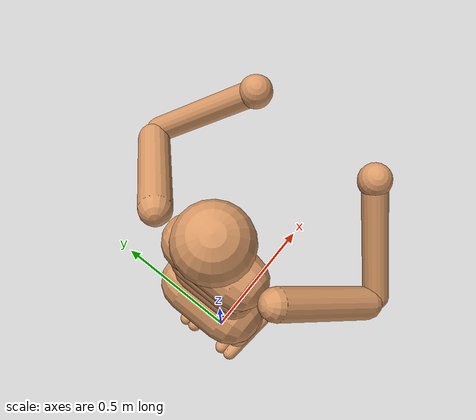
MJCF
<mujoco model="mars_humanoid">
  <compiler angle="degree" inertiafromgeom="true"/>
  <default>
    <joint armature="1" damping="1" limited="true"/>
    <geom condim="3" friction="0.65 0.005 0.0001" margin="0.001"
          rgba="0.85 0.6 0.4 1" solref="0.01 1" solimp="0.99 0.99 0.01"/>
    <motor ctrlrange="-150 150" ctrllimited="true"/>
  </default>

  <worldbody>
    <body name="torso" pos="0 0 1.4">
      <freejoint name="root"/>
      <camera name="front" pos="0 -3 0" xyaxes="1 0 0 0 0 1" mode="trackcom"/>
      <camera name="side"  pos="3 0 0" xyaxes="0 -1 0 0 0 1" mode="trackcom"/>

      <geom name="torso"  type="capsule" fromto="0 -0.07 0 0 0.07 0" size="0.07"/>
      <geom name="upper_waist" type="capsule" fromto="-0.01 -0.06 -0.12 -0.01 0.06 -0.12" size="0.06"/>

      <body name="head" pos="0 0 0.19">
        <geom name="head" type="sphere" size="0.09"/>
      </body>

      <body name="lower_waist" pos="-0.01 0 -0.26">
        <geom name="lower_waist" type="capsule" fromto="0 -0.06 0 0 0.06 0" size="0.06"/>
        <joint name="abdomen_z" axis="0 0 1" pos="0 0 0.065" range="-45 45" stiffness="20" damping="5"/>
        <joint name="abdomen_y" axis="0 1 0" pos="0 0 0.065" range="-75 30" stiffness="10" damping="5"/>

        <body name="pelvis" pos="0 0 -0.165">
          <joint name="abdomen_x" axis="1 0 0" pos="0 0 0.1" range="-35 35" stiffness="10" damping="5"/>
          <geom name="pelvis" type="capsule" fromto="-0.02 -0.07 0 -0.02 0.07 0" size="0.09"/>

          <!-- Right thigh / shin / foot -->
          <body name="right_thigh" pos="0 -0.1 -0.04">
            <joint name="right_hip_x" axis="1 0 0" range="-25 5"  stiffness="10" damping="5"/>
            <joint name="right_hip_z" axis="0 0 1" range="-60 35" stiffness="10" damping="5"/>
            <joint name="right_hip_y" axis="0 1 0" range="-110 20" stiffness="20" damping="5"/>
            <geom name="right_thigh" type="capsule" fromto="0 0 0 0 0.01 -0.34" size="0.06"/>
            <body name="right_shin" pos="0 0.01 -0.4">
              <joint name="right_knee" axis="0 -1 0" pos="0 0 0.02" range="-160 -2"/>
              <geom name="right_shin" type="capsule" fromto="0 0 0 0 0 -0.3" size="0.049"/>
              <body name="right_foot" pos="0 0 -0.39">
                <geom name="right_right_foot" type="capsule" fromto="-0.07 -0.02 0 0.14 -0.04 0" size="0.027"/>
                <geom name="left_right_foot"  type="capsule" fromto="-0.07  0.02 0 0.14  0.04 0" size="0.027"/>
              </body>
            </body>
          </body>

          <body name="left_thigh" pos="0 0.1 -0.04">
            <joint name="left_hip_x" axis="-1 0 0" range="-25 5"  stiffness="10" damping="5"/>
            <joint name="left_hip_z" axis="0 0 -1" range="-60 35" stiffness="10" damping="5"/>
            <joint name="left_hip_y" axis="0 1 0"  range="-110 20" stiffness="20" damping="5"/>
            <geom name="left_thigh" type="capsule" fromto="0 0 0 0 -0.01 -0.34" size="0.06"/>
            <body name="left_shin" pos="0 -0.01 -0.4">
              <joint name="left_knee" axis="0 -1 0" pos="0 0 0.02" range="-160 -2"/>
              <geom name="left_shin" type="capsule" fromto="0 0 0 0 0 -0.3" size="0.049"/>
              <body name="left_foot" pos="0 0 -0.39">
                <geom name="left_left_foot"  type="capsule" fromto="-0.07  0.02 0 0.14  0.04 0" size="0.027"/>
                <geom name="right_left_foot" type="capsule" fromto="-0.07 -0.02 0 0.14 -0.04 0" size="0.027"/>
              </body>
            </body>
          </body>
        </body>
      </body>

      <!-- Right arm -->
      <body name="right_upper_arm" pos="0 -0.17 0.06">
        <joint name="right_shoulder1" axis="2 1 1"  range="-85 60" stiffness="10" damping="5"/>
        <joint name="right_shoulder2" axis="0 -1 1" range="-85 60" stiffness="10" damping="5"/>
        <geom name="right_uarm1" type="capsule" fromto="0 0 0 0.16 -0.16 -0.16" size="0.04"/>
        <body name="right_lower_arm" pos="0.18 -0.18 -0.18">
          <joint name="right_elbow" axis="0 -1 1" range="-90 50" stiffness="0" damping="2"/>
          <geom name="right_larm" type="capsule" fromto="0.01 0.01 0.01 0.17 0.17 0.17" size="0.031"/>
          <geom name="right_hand" type="sphere" pos="0.18 0.18 0.18" size="0.04"/>
        </body>
      </body>

      <body name="left_upper_arm" pos="0 0.17 0.06">
        <joint name="left_shoulder1" axis="2 -1 1" range="-60 85" stiffness="10" damping="5"/>
        <joint name="left_shoulder2" axis="0 1 1"  range="-60 85" stiffness="10" damping="5"/>
        <geom name="left_uarm1" type="capsule" fromto="0 0 0 0.16 0.16 -0.16" size="0.04"/>
        <body name="left_lower_arm" pos="0.18 0.18 -0.18">
          <joint name="left_elbow" axis="0 -1 -1" range="-90 50" stiffness="0" damping="2"/>
          <geom name="left_larm" type="capsule" fromto="0.01 -0.01 0.01 0.17 -0.17 0.17" size="0.031"/>
          <geom name="left_hand" type="sphere" pos="0.18 -0.18 0.18" size="0.04"/>
        </body>
      </body>
    </body>
  </worldbody>

  <actuator>
    <position name="abdomen_y"      joint="abdomen_y"      kp="200"  kv="20"/>
    <position name="abdomen_z"      joint="abdomen_z"      kp="200"  kv="20"/>
    <position name="abdomen_x"      joint="abdomen_x"      kp="200"  kv="20"/>
    <position name="right_hip_x"    joint="right_hip_x"    kp="120"  kv="12"/>
    <position name="right_hip_z"    joint="right_hip_z"    kp="120"  kv="12"/>
    <position name="right_hip_y"    joint="right_hip_y"    kp="350"  kv="30"/>
    <position name="right_knee"     joint="right_knee"     kp="350"  kv="30"/>
    <position name="left_hip_x"     joint="left_hip_x"     kp="120"  kv="12"/>
    <position name="left_hip_z"     joint="left_hip_z"     kp="120"  kv="12"/>
    <position name="left_hip_y"     joint="left_hip_y"     kp="350"  kv="30"/>
    <position name="left_knee"      joint="left_knee"      kp="350"  kv="30"/>
    <position name="right_shoulder1" joint="right_shoulder1" kp="60"  kv="6"/>
    <position name="right_shoulder2" joint="right_shoulder2" kp="60"  kv="6"/>
    <position name="right_elbow"     joint="right_elbow"     kp="40"  kv="4"/>
    <position name="left_shoulder1"  joint="left_shoulder1"  kp="60"  kv="6"/>
    <position name="left_shoulder2"  joint="left_shoulder2"  kp="60"  kv="6"/>
    <position name="left_elbow"      joint="left_elbow"      kp="40"  kv="4"/>
  </actuator>
</mujoco>
